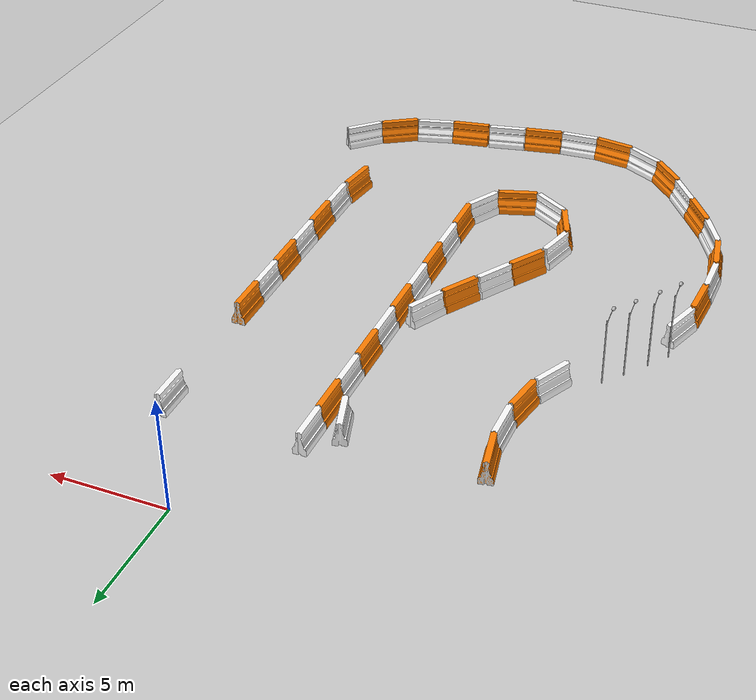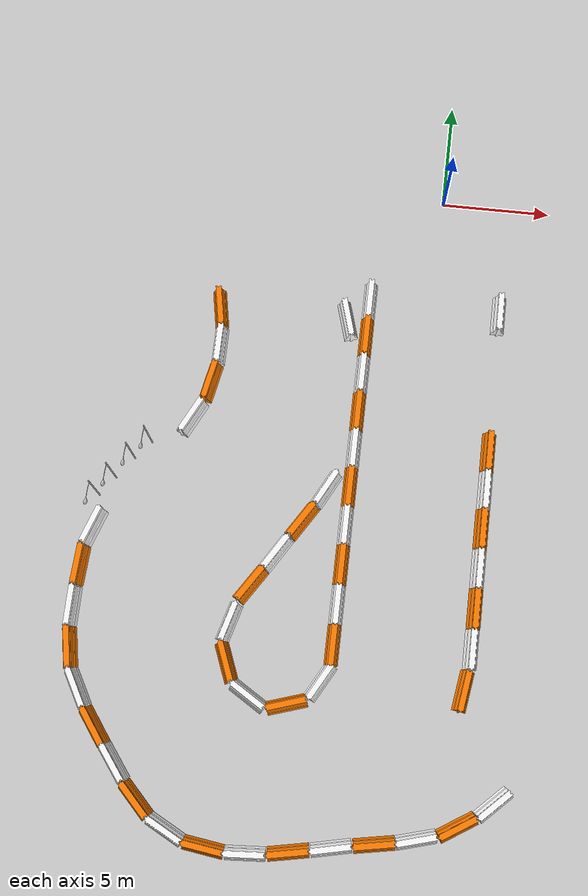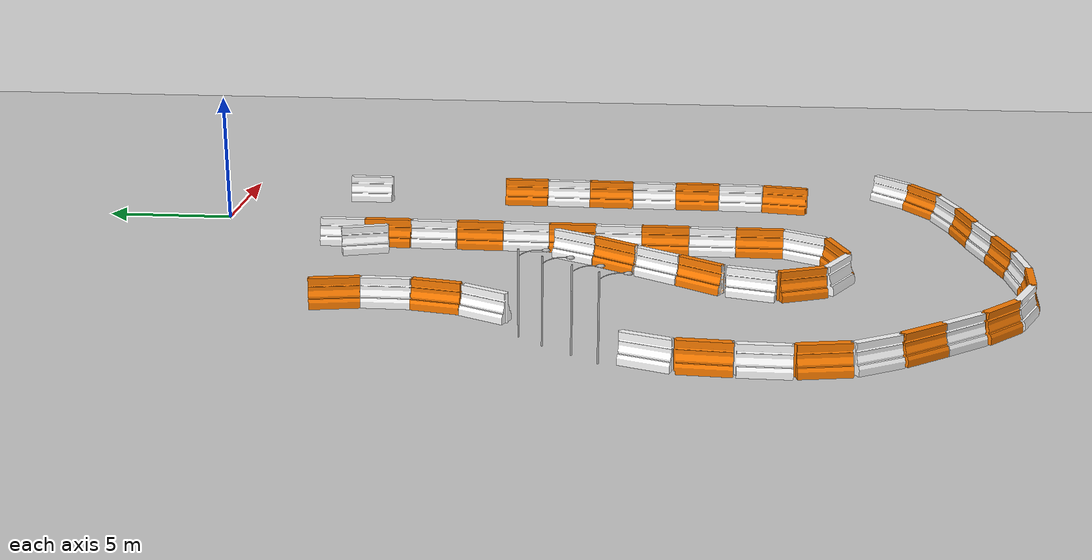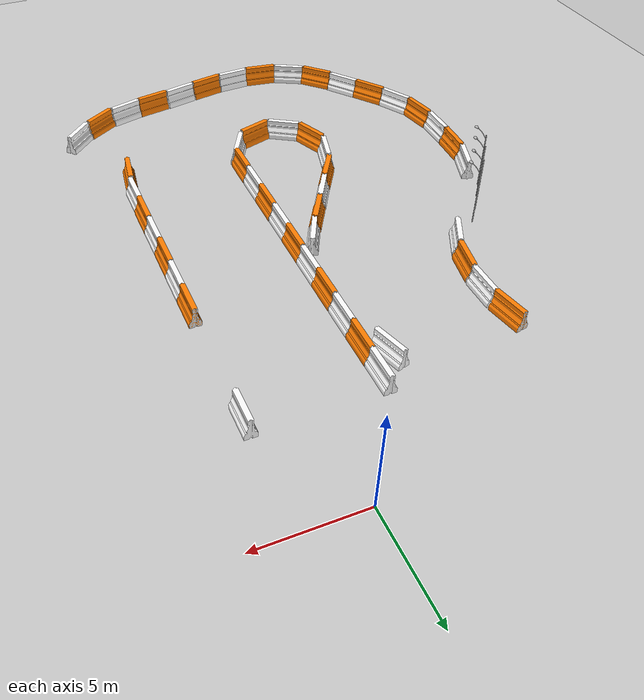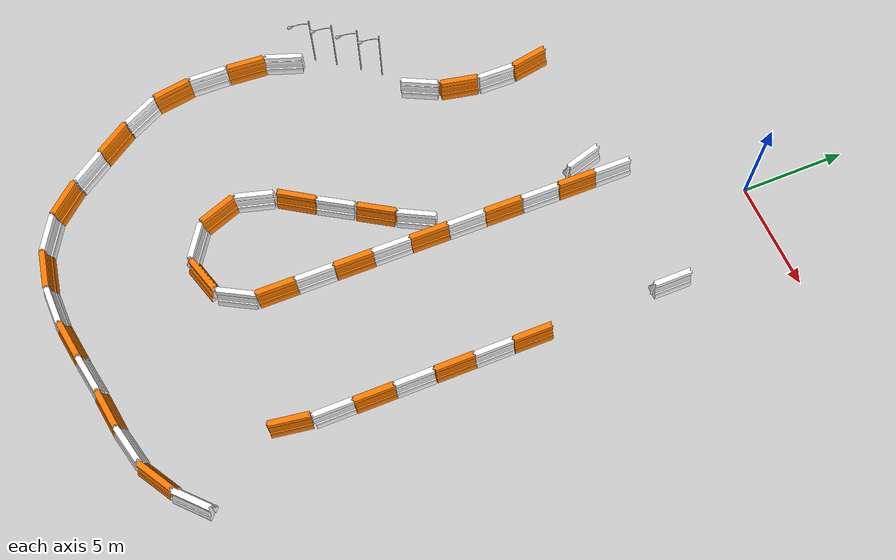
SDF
<sdf version="1.4">
 <world name="default">
  <model name="ground_plane">
   <static>1</static>
   <link name="link">
    <collision name="collision">
     <geometry><plane><normal>0 0 1</normal><size>100 100</size></plane></geometry>
     <surface><friction><ode><mu>100</mu><mu2>50</mu2></ode></friction></surface>
    </collision>
    <visual name="visual">
     <cast_shadows>0</cast_shadows>
     <geometry><plane><normal>0 0 1</normal><size>100 100</size></plane></geometry>
     <material>
      <script><uri>file://media/materials/scripts/gazebo.material</uri><name>Gazebo/Grey</name></script>
     </material>
    </visual>
    <velocity_decay><linear>0</linear><angular>0</angular></velocity_decay>
   </link>
  </model>
  <model name="drc_practice_white_jersey_barrier_24">
   <static>1</static>
   <link name="link">
    <visual name="visual">
     <geometry>
      <mesh><uri>model://drc_practice_white_jersey_barrier/meshes/jersey_barrier.dae</uri></mesh>
     </geometry>
    </visual>
    <collision name="collision">
     <geometry>
      <mesh><uri>model://drc_practice_white_jersey_barrier/meshes/jersey_barrier.dae</uri></mesh>
     </geometry>
    </collision>
    <velocity_decay><linear>0</linear><angular>0</angular></velocity_decay>
   </link>
   <pose>-3.97749 -6.376 0 0 -0 0.294214</pose>
  </model>
  <model name="Lamp Post">
   <static>1</static>
   <link name="link">
    <collision name="collision">
     <geometry><mesh><uri>model://lamp_post/meshes/lamp_post.dae</uri></mesh></geometry>
    </collision>
    <visual name="visual">
     <geometry><mesh><uri>model://lamp_post/meshes/lamp_post.dae</uri></mesh></geometry>
    </visual>
    <velocity_decay><linear>0</linear><angular>0</angular></velocity_decay>
   </link>
   <pose>-13.6677 -14.8578 0 0 -0 0</pose>
  </model>
  <model name="Lamp Post_0">
   <static>1</static>
   <link name="link">
    <collision name="collision">
     <geometry><mesh><uri>model://lamp_post/meshes/lamp_post.dae</uri></mesh></geometry>
    </collision>
    <visual name="visual">
     <geometry><mesh><uri>model://lamp_post/meshes/lamp_post.dae</uri></mesh></geometry>
    </visual>
    <velocity_decay><linear>0</linear><angular>0</angular></velocity_decay>
   </link>
   <pose>-12.9462 -13.8703 0 0 -0 0</pose>
  </model>
  <model name="Lamp Post_1">
   <static>1</static>
   <link name="link">
    <collision name="collision">
     <geometry><mesh><uri>model://lamp_post/meshes/lamp_post.dae</uri></mesh></geometry>
    </collision>
    <visual name="visual">
     <geometry><mesh><uri>model://lamp_post/meshes/lamp_post.dae</uri></mesh></geometry>
    </visual>
    <velocity_decay><linear>0</linear><angular>0</angular></velocity_decay>
   </link>
   <pose>-12.274 -13.0475 0 0 -0 0</pose>
  </model>
  <model name="drc_practice_white_jersey_barrier_26">
   <static>1</static>
   <link name="link">
    <visual name="visual">
     <geometry>
      <mesh><uri>model://drc_practice_white_jersey_barrier/meshes/jersey_barrier.dae</uri></mesh>
     </geometry>
    </visual>
    <collision name="collision">
     <geometry>
      <mesh><uri>model://drc_practice_white_jersey_barrier/meshes/jersey_barrier.dae</uri></mesh>
     </geometry>
    </collision>
    <velocity_decay><linear>0</linear><angular>0</angular></velocity_decay>
   </link>
   <pose>-3.04483 -5.35598 0 0 -0 0</pose>
  </model>
  <model name="drc_practice_organge_jersey_barrier_25">
   <static>1</static>
   <link name="link">
    <visual name="visual">
     <geometry>
      <mesh><uri>model://drc_practice_orange_jersey_barrier/meshes/jersey_barrier.dae</uri></mesh>
     </geometry>
    </visual>
    <collision name="collision">
     <geometry>
      <mesh><uri>model://drc_practice_orange_jersey_barrier/meshes/jersey_barrier.dae</uri></mesh>
     </geometry>
    </collision>
    <velocity_decay><linear>0</linear><angular>0</angular></velocity_decay>
   </link>
   <pose>-3.05148 -7.12574 0 0 -0 0</pose>
  </model>
  <model name="drc_practice_white_jersey_barrier_27">
   <static>1</static>
   <link name="link">
    <visual name="visual">
     <geometry>
      <mesh><uri>model://drc_practice_white_jersey_barrier/meshes/jersey_barrier.dae</uri></mesh>
     </geometry>
    </visual>
    <collision name="collision">
     <geometry>
      <mesh><uri>model://drc_practice_white_jersey_barrier/meshes/jersey_barrier.dae</uri></mesh>
     </geometry>
    </collision>
    <velocity_decay><linear>0</linear><angular>0</angular></velocity_decay>
   </link>
   <pose>-3.05862 -8.92187 0 0 -0 0</pose>
  </model>
  <model name="drc_practice_organge_jersey_barrier_26">
   <static>1</static>
   <link name="link">
    <visual name="visual">
     <geometry>
      <mesh><uri>model://drc_practice_orange_jersey_barrier/meshes/jersey_barrier.dae</uri></mesh>
     </geometry>
    </visual>
    <collision name="collision">
     <geometry>
      <mesh><uri>model://drc_practice_orange_jersey_barrier/meshes/jersey_barrier.dae</uri></mesh>
     </geometry>
    </collision>
    <velocity_decay><linear>0</linear><angular>0</angular></velocity_decay>
   </link>
   <pose>-3.07394 -10.728 0 0 -0 0</pose>
  </model>
  <model name="drc_practice_white_jersey_barrier_28">
   <static>1</static>
   <link name="link">
    <visual name="visual">
     <geometry>
      <mesh><uri>model://drc_practice_white_jersey_barrier/meshes/jersey_barrier.dae</uri></mesh>
     </geometry>
    </visual>
    <collision name="collision">
     <geometry>
      <mesh><uri>model://drc_practice_white_jersey_barrier/meshes/jersey_barrier.dae</uri></mesh>
     </geometry>
    </collision>
    <velocity_decay><linear>0</linear><angular>0</angular></velocity_decay>
   </link>
   <pose>-3.08094 -12.4967 0 0 -0 0</pose>
  </model>
  <model name="drc_practice_organge_jersey_barrier_27">
   <static>1</static>
   <link name="link">
    <visual name="visual">
     <geometry>
      <mesh><uri>model://drc_practice_orange_jersey_barrier/meshes/jersey_barrier.dae</uri></mesh>
     </geometry>
    </visual>
    <collision name="collision">
     <geometry>
      <mesh><uri>model://drc_practice_orange_jersey_barrier/meshes/jersey_barrier.dae</uri></mesh>
     </geometry>
    </collision>
    <velocity_decay><linear>0</linear><angular>0</angular></velocity_decay>
   </link>
   <pose>-3.09613 -14.2748 0 0 -0 0</pose>
  </model>
  <model name="drc_practice_white_jersey_barrier_29">
   <static>1</static>
   <link name="link">
    <visual name="visual">
     <geometry>
      <mesh><uri>model://drc_practice_white_jersey_barrier/meshes/jersey_barrier.dae</uri></mesh>
     </geometry>
    </visual>
    <collision name="collision">
     <geometry>
      <mesh><uri>model://drc_practice_white_jersey_barrier/meshes/jersey_barrier.dae</uri></mesh>
     </geometry>
    </collision>
    <velocity_decay><linear>0</linear><angular>0</angular></velocity_decay>
   </link>
   <pose>-3.1112 -16.0395 0 0 -0 0</pose>
  </model>
  <model name="drc_practice_organge_jersey_barrier_30">
   <static>1</static>
   <link name="link">
    <visual name="visual">
     <geometry>
      <mesh><uri>model://drc_practice_orange_jersey_barrier/meshes/jersey_barrier.dae</uri></mesh>
     </geometry>
    </visual>
    <collision name="collision">
     <geometry>
      <mesh><uri>model://drc_practice_orange_jersey_barrier/meshes/jersey_barrier.dae</uri></mesh>
     </geometry>
    </collision>
    <velocity_decay><linear>0</linear><angular>0</angular></velocity_decay>
   </link>
   <pose>-9.91442 -6.43478 0 0 -0 0.189369</pose>
  </model>
  <model name="drc_practice_organge_jersey_barrier_31">
   <static>1</static>
   <link name="link">
    <visual name="visual">
     <geometry>
      <mesh><uri>model://drc_practice_orange_jersey_barrier/meshes/jersey_barrier.dae</uri></mesh>
     </geometry>
    </visual>
    <collision name="collision">
     <geometry>
      <mesh><uri>model://drc_practice_orange_jersey_barrier/meshes/jersey_barrier.dae</uri></mesh>
     </geometry>
    </collision>
    <velocity_decay><linear>0</linear><angular>0</angular></velocity_decay>
   </link>
   <pose>-9.94778 -10.0047 0 0 0 -0.188871</pose>
  </model>
  <model name="drc_practice_organge_jersey_barrier_32">
   <static>1</static>
   <link name="link">
    <visual name="visual">
     <geometry>
      <mesh><uri>model://drc_practice_orange_jersey_barrier/meshes/jersey_barrier.dae</uri></mesh>
     </geometry>
    </visual>
    <collision name="collision">
     <geometry>
      <mesh><uri>model://drc_practice_orange_jersey_barrier/meshes/jersey_barrier.dae</uri></mesh>
     </geometry>
    </collision>
    <velocity_decay><linear>0</linear><angular>0</angular></velocity_decay>
   </link>
   <pose>-5.07037 -16.0221 0 0 -0 2.58471</pose>
  </model>
  <model name="drc_practice_white_jersey_barrier_30">
   <static>1</static>
   <link name="link">
    <visual name="visual">
     <geometry>
      <mesh><uri>model://drc_practice_white_jersey_barrier/meshes/jersey_barrier.dae</uri></mesh>
     </geometry>
    </visual>
    <collision name="collision">
     <geometry>
      <mesh><uri>model://drc_practice_white_jersey_barrier/meshes/jersey_barrier.dae</uri></mesh>
     </geometry>
    </collision>
    <velocity_decay><linear>0</linear><angular>0</angular></velocity_decay>
   </link>
   <pose>-9.74307 -8.20965 0 0 -0 0</pose>
  </model>
  <model name="drc_practice_white_jersey_barrier_31">
   <static>1</static>
   <link name="link">
    <visual name="visual">
     <geometry>
      <mesh><uri>model://drc_practice_white_jersey_barrier/meshes/jersey_barrier.dae</uri></mesh>
     </geometry>
    </visual>
    <collision name="collision">
     <geometry>
      <mesh><uri>model://drc_practice_white_jersey_barrier/meshes/jersey_barrier.dae</uri></mesh>
     </geometry>
    </collision>
    <velocity_decay><linear>0</linear><angular>0</angular></velocity_decay>
   </link>
   <pose>-10.569 -11.7389 0 0 0 -0.459284</pose>
  </model>
  <model name="drc_practice_white_jersey_barrier_32">
   <static>1</static>
   <link name="link">
    <visual name="visual">
     <geometry>
      <mesh><uri>model://drc_practice_white_jersey_barrier/meshes/jersey_barrier.dae</uri></mesh>
     </geometry>
    </visual>
    <collision name="collision">
     <geometry>
      <mesh><uri>model://drc_practice_white_jersey_barrier/meshes/jersey_barrier.dae</uri></mesh>
     </geometry>
    </collision>
    <velocity_decay><linear>0</linear><angular>0</angular></velocity_decay>
   </link>
   <pose>-6.06161 -17.5832 0 0 -0 2.59191</pose>
  </model>
  <model name="drc_practice_white_jersey_barrier_33">
   <static>1</static>
   <link name="link">
    <visual name="visual">
     <geometry>
      <mesh><uri>model://drc_practice_white_jersey_barrier/meshes/jersey_barrier.dae</uri></mesh>
     </geometry>
    </visual>
    <collision name="collision">
     <geometry>
      <mesh><uri>model://drc_practice_white_jersey_barrier/meshes/jersey_barrier.dae</uri></mesh>
     </geometry>
    </collision>
    <velocity_decay><linear>0</linear><angular>0</angular></velocity_decay>
   </link>
   <pose>-7.77495 -20.8456 0 0 -0 2.87477</pose>
  </model>
  <model name="drc_practice_organge_jersey_barrier_33">
   <static>1</static>
   <link name="link">
    <visual name="visual">
     <geometry>
      <mesh><uri>model://drc_practice_orange_jersey_barrier/meshes/jersey_barrier.dae</uri></mesh>
     </geometry>
    </visual>
    <collision name="collision">
     <geometry>
      <mesh><uri>model://drc_practice_orange_jersey_barrier/meshes/jersey_barrier.dae</uri></mesh>
     </geometry>
    </collision>
    <velocity_decay><linear>0</linear><angular>0</angular></velocity_decay>
   </link>
   <pose>-3.10911 -17.8095 0 0 -0 0</pose>
  </model>
  <model name="drc_practice_white_jersey_barrier_34">
   <static>1</static>
   <link name="link">
    <visual name="visual">
     <geometry>
      <mesh><uri>model://drc_practice_white_jersey_barrier/meshes/jersey_barrier.dae</uri></mesh>
     </geometry>
    </visual>
    <collision name="collision">
     <geometry>
      <mesh><uri>model://drc_practice_white_jersey_barrier/meshes/jersey_barrier.dae</uri></mesh>
     </geometry>
    </collision>
    <velocity_decay><linear>0</linear><angular>0</angular></velocity_decay>
   </link>
   <pose>-3.11856 -19.5914 0 0 -0 0</pose>
  </model>
  <model name="drc_practice_organge_jersey_barrier_34">
   <static>1</static>
   <link name="link">
    <visual name="visual">
     <geometry>
      <mesh><uri>model://drc_practice_orange_jersey_barrier/meshes/jersey_barrier.dae</uri></mesh>
     </geometry>
    </visual>
    <collision name="collision">
     <geometry>
      <mesh><uri>model://drc_practice_orange_jersey_barrier/meshes/jersey_barrier.dae</uri></mesh>
     </geometry>
    </collision>
    <velocity_decay><linear>0</linear><angular>0</angular></velocity_decay>
   </link>
   <pose>-3.12897 -21.3702 0 0 -0 0</pose>
  </model>
  <model name="drc_practice_white_jersey_barrier_35">
   <static>1</static>
   <link name="link">
    <visual name="visual">
     <geometry>
      <mesh><uri>model://drc_practice_white_jersey_barrier/meshes/jersey_barrier.dae</uri></mesh>
     </geometry>
    </visual>
    <collision name="collision">
     <geometry>
      <mesh><uri>model://drc_practice_white_jersey_barrier/meshes/jersey_barrier.dae</uri></mesh>
     </geometry>
    </collision>
    <velocity_decay><linear>0</linear><angular>0</angular></velocity_decay>
   </link>
   <pose>-3.5088 -23 0 0 0 -0.506066</pose>
  </model>
  <model name="drc_practice_organge_jersey_barrier_35">
   <static>1</static>
   <link name="link">
    <visual name="visual">
     <geometry>
      <mesh><uri>model://drc_practice_orange_jersey_barrier/meshes/jersey_barrier.dae</uri></mesh>
     </geometry>
    </visual>
    <collision name="collision">
     <geometry>
      <mesh><uri>model://drc_practice_orange_jersey_barrier/meshes/jersey_barrier.dae</uri></mesh>
     </geometry>
    </collision>
    <velocity_decay><linear>0</linear><angular>0</angular></velocity_decay>
   </link>
   <pose>-4.85199 -24.095 0 0 0 -1.25715</pose>
  </model>
  <model name="drc_practice_white_jersey_barrier_36">
   <static>1</static>
   <link name="link">
    <visual name="visual">
     <geometry>
      <mesh><uri>model://drc_practice_white_jersey_barrier/meshes/jersey_barrier.dae</uri></mesh>
     </geometry>
    </visual>
    <collision name="collision">
     <geometry>
      <mesh><uri>model://drc_practice_white_jersey_barrier/meshes/jersey_barrier.dae</uri></mesh>
     </geometry>
    </collision>
    <velocity_decay><linear>0</linear><angular>0</angular></velocity_decay>
   </link>
   <pose>-6.54985 -23.9256 0 0 0 -2.11923</pose>
  </model>
  <model name="drc_practice_organge_jersey_barrier_36">
   <static>1</static>
   <link name="link">
    <visual name="visual">
     <geometry>
      <mesh><uri>model://drc_practice_orange_jersey_barrier/meshes/jersey_barrier.dae</uri></mesh>
     </geometry>
    </visual>
    <collision name="collision">
     <geometry>
      <mesh><uri>model://drc_practice_orange_jersey_barrier/meshes/jersey_barrier.dae</uri></mesh>
     </geometry>
    </collision>
    <velocity_decay><linear>0</linear><angular>0</angular></velocity_decay>
   </link>
   <pose>-7.67559 -22.5916 0 0 0 -2.76094</pose>
  </model>
  <model name="drc_practice_organge_jersey_barrier_37">
   <static>1</static>
   <link name="link">
    <visual name="visual">
     <geometry>
      <mesh><uri>model://drc_practice_orange_jersey_barrier/meshes/jersey_barrier.dae</uri></mesh>
     </geometry>
    </visual>
    <collision name="collision">
     <geometry>
      <mesh><uri>model://drc_practice_orange_jersey_barrier/meshes/jersey_barrier.dae</uri></mesh>
     </geometry>
    </collision>
    <velocity_decay><linear>0</linear><angular>0</angular></velocity_decay>
   </link>
   <pose>-7.02522 -19.0986 0 0 -0 2.57099</pose>
  </model>
  <model name="drc_practice_white_jersey_barrier_37">
   <static>1</static>
   <link name="link">
    <visual name="visual">
     <geometry>
      <mesh><uri>model://drc_practice_white_jersey_barrier/meshes/jersey_barrier.dae</uri></mesh>
     </geometry>
    </visual>
    <collision name="collision">
     <geometry>
      <mesh><uri>model://drc_practice_white_jersey_barrier/meshes/jersey_barrier.dae</uri></mesh>
     </geometry>
    </collision>
    <velocity_decay><linear>0</linear><angular>0</angular></velocity_decay>
   </link>
   <pose>-4.14275 -14.4624 0 0 -0 2.66082</pose>
  </model>
  <model name="drc_practice_white_jersey_barrier_38">
   <static>1</static>
   <link name="link">
    <visual name="visual">
     <geometry>
      <mesh><uri>model://drc_practice_white_jersey_barrier/meshes/jersey_barrier.dae</uri></mesh>
     </geometry>
    </visual>
    <collision name="collision">
     <geometry>
      <mesh><uri>model://drc_practice_white_jersey_barrier/meshes/jersey_barrier.dae</uri></mesh>
     </geometry>
    </collision>
    <velocity_decay><linear>0</linear><angular>0</angular></velocity_decay>
   </link>
   <pose>2.99022 -5.38528 0 0 -0 0</pose>
  </model>
  <model name="drc_practice_organge_jersey_barrier_38">
   <static>1</static>
   <link name="link">
    <visual name="visual">
     <geometry>
      <mesh><uri>model://drc_practice_orange_jersey_barrier/meshes/jersey_barrier.dae</uri></mesh>
     </geometry>
    </visual>
    <collision name="collision">
     <geometry>
      <mesh><uri>model://drc_practice_orange_jersey_barrier/meshes/jersey_barrier.dae</uri></mesh>
     </geometry>
    </collision>
    <velocity_decay><linear>0</linear><angular>0</angular></velocity_decay>
   </link>
   <pose>3 -12 0 0 -0 0</pose>
  </model>
  <model name="drc_practice_white_jersey_barrier_39">
   <static>1</static>
   <link name="link">
    <visual name="visual">
     <geometry>
      <mesh><uri>model://drc_practice_white_jersey_barrier/meshes/jersey_barrier.dae</uri></mesh>
     </geometry>
    </visual>
    <collision name="collision">
     <geometry>
      <mesh><uri>model://drc_practice_white_jersey_barrier/meshes/jersey_barrier.dae</uri></mesh>
     </geometry>
    </collision>
    <velocity_decay><linear>0</linear><angular>0</angular></velocity_decay>
   </link>
   <pose>2.99462 -13.7846 0 0 -0 0</pose>
  </model>
  <model name="drc_practice_organge_jersey_barrier_39">
   <static>1</static>
   <link name="link">
    <visual name="visual">
     <geometry>
      <mesh><uri>model://drc_practice_orange_jersey_barrier/meshes/jersey_barrier.dae</uri></mesh>
     </geometry>
    </visual>
    <collision name="collision">
     <geometry>
      <mesh><uri>model://drc_practice_orange_jersey_barrier/meshes/jersey_barrier.dae</uri></mesh>
     </geometry>
    </collision>
    <velocity_decay><linear>0</linear><angular>0</angular></velocity_decay>
   </link>
   <pose>2.97343 -15.5567 0 0 -0 0</pose>
  </model>
  <model name="drc_practice_white_jersey_barrier_40">
   <static>1</static>
   <link name="link">
    <visual name="visual">
     <geometry>
      <mesh><uri>model://drc_practice_white_jersey_barrier/meshes/jersey_barrier.dae</uri></mesh>
     </geometry>
    </visual>
    <collision name="collision">
     <geometry>
      <mesh><uri>model://drc_practice_white_jersey_barrier/meshes/jersey_barrier.dae</uri></mesh>
     </geometry>
    </collision>
    <velocity_decay><linear>0</linear><angular>0</angular></velocity_decay>
   </link>
   <pose>2.96459 -17.3555 0 0 -0 0</pose>
  </model>
  <model name="drc_practice_organge_jersey_barrier_40">
   <static>1</static>
   <link name="link">
    <visual name="visual">
     <geometry>
      <mesh><uri>model://drc_practice_orange_jersey_barrier/meshes/jersey_barrier.dae</uri></mesh>
     </geometry>
    </visual>
    <collision name="collision">
     <geometry>
      <mesh><uri>model://drc_practice_orange_jersey_barrier/meshes/jersey_barrier.dae</uri></mesh>
     </geometry>
    </collision>
    <velocity_decay><linear>0</linear><angular>0</angular></velocity_decay>
   </link>
   <pose>2.9538 -19.14 0 0 -0 0</pose>
  </model>
  <model name="drc_practice_white_jersey_barrier_41">
   <static>1</static>
   <link name="link">
    <visual name="visual">
     <geometry>
      <mesh><uri>model://drc_practice_white_jersey_barrier/meshes/jersey_barrier.dae</uri></mesh>
     </geometry>
    </visual>
    <collision name="collision">
     <geometry>
      <mesh><uri>model://drc_practice_white_jersey_barrier/meshes/jersey_barrier.dae</uri></mesh>
     </geometry>
    </collision>
    <velocity_decay><linear>0</linear><angular>0</angular></velocity_decay>
   </link>
   <pose>2.92708 -20.9252 0 0 -0 0</pose>
  </model>
  <model name="drc_practice_organge_jersey_barrier_41">
   <static>1</static>
   <link name="link">
    <visual name="visual">
     <geometry>
      <mesh><uri>model://drc_practice_orange_jersey_barrier/meshes/jersey_barrier.dae</uri></mesh>
     </geometry>
    </visual>
    <collision name="collision">
     <geometry>
      <mesh><uri>model://drc_practice_orange_jersey_barrier/meshes/jersey_barrier.dae</uri></mesh>
     </geometry>
    </collision>
    <velocity_decay><linear>0</linear><angular>0</angular></velocity_decay>
   </link>
   <pose>2.72401 -22.7457 0 0 0 -0.149645</pose>
  </model>
  <model name="drc_practice_white_jersey_barrier_43">
   <static>1</static>
   <link name="link">
    <visual name="visual">
     <geometry>
      <mesh><uri>model://drc_practice_white_jersey_barrier/meshes/jersey_barrier.dae</uri></mesh>
     </geometry>
    </visual>
    <collision name="collision">
     <geometry>
      <mesh><uri>model://drc_practice_white_jersey_barrier/meshes/jersey_barrier.dae</uri></mesh>
     </geometry>
    </collision>
    <velocity_decay><linear>0</linear><angular>0</angular></velocity_decay>
   </link>
   <pose>4.37436 -27.3696 0 0 0 -0.801831</pose>
  </model>
  <model name="drc_practice_organge_jersey_barrier_42">
   <static>1</static>
   <link name="link">
    <visual name="visual">
     <geometry>
      <mesh><uri>model://drc_practice_orange_jersey_barrier/meshes/jersey_barrier.dae</uri></mesh>
     </geometry>
    </visual>
    <collision name="collision">
     <geometry>
      <mesh><uri>model://drc_practice_orange_jersey_barrier/meshes/jersey_barrier.dae</uri></mesh>
     </geometry>
    </collision>
    <velocity_decay><linear>0</linear><angular>0</angular></velocity_decay>
   </link>
   <pose>-4.10613 -30.1995 0 0 0 -1.37528</pose>
  </model>
  <model name="drc_practice_organge_jersey_barrier_43">
   <static>1</static>
   <link name="link">
    <visual name="visual">
     <geometry>
      <mesh><uri>model://drc_practice_orange_jersey_barrier/meshes/jersey_barrier.dae</uri></mesh>
     </geometry>
    </visual>
    <collision name="collision">
     <geometry>
      <mesh><uri>model://drc_practice_orange_jersey_barrier/meshes/jersey_barrier.dae</uri></mesh>
     </geometry>
    </collision>
    <velocity_decay><linear>0</linear><angular>0</angular></velocity_decay>
   </link>
   <pose>-0.532365 -29.5132 0 0 0 -1.38631</pose>
  </model>
  <model name="drc_practice_organge_jersey_barrier_44">
   <static>1</static>
   <link name="link">
    <visual name="visual">
     <geometry>
      <mesh><uri>model://drc_practice_orange_jersey_barrier/meshes/jersey_barrier.dae</uri></mesh>
     </geometry>
    </visual>
    <collision name="collision">
     <geometry>
      <mesh><uri>model://drc_practice_orange_jersey_barrier/meshes/jersey_barrier.dae</uri></mesh>
     </geometry>
    </collision>
    <velocity_decay><linear>0</linear><angular>0</angular></velocity_decay>
   </link>
   <pose>2.90905 -28.4471 0 0 0 -1.00524</pose>
  </model>
  <model name="drc_practice_white_jersey_barrier_44">
   <static>1</static>
   <link name="link">
    <visual name="visual">
     <geometry>
      <mesh><uri>model://drc_practice_white_jersey_barrier/meshes/jersey_barrier.dae</uri></mesh>
     </geometry>
    </visual>
    <collision name="collision">
     <geometry>
      <mesh><uri>model://drc_practice_white_jersey_barrier/meshes/jersey_barrier.dae</uri></mesh>
     </geometry>
    </collision>
    <velocity_decay><linear>0</linear><angular>0</angular></velocity_decay>
   </link>
   <pose>1.21748 -29.1275 0 0 0 -1.29655</pose>
  </model>
  <model name="drc_practice_white_jersey_barrier_45">
   <static>1</static>
   <link name="link">
    <visual name="visual">
     <geometry>
      <mesh><uri>model://drc_practice_white_jersey_barrier/meshes/jersey_barrier.dae</uri></mesh>
     </geometry>
    </visual>
    <collision name="collision">
     <geometry>
      <mesh><uri>model://drc_practice_white_jersey_barrier/meshes/jersey_barrier.dae</uri></mesh>
     </geometry>
    </collision>
    <velocity_decay><linear>0</linear><angular>0</angular></velocity_decay>
   </link>
   <pose>-2.32505 -29.8419 0 0 0 -1.35224</pose>
  </model>
  <model name="drc_practice_white_jersey_barrier_46">
   <static>1</static>
   <link name="link">
    <visual name="visual">
     <geometry>
      <mesh><uri>model://drc_practice_white_jersey_barrier/meshes/jersey_barrier.dae</uri></mesh>
     </geometry>
    </visual>
    <collision name="collision">
     <geometry>
      <mesh><uri>model://drc_practice_white_jersey_barrier/meshes/jersey_barrier.dae</uri></mesh>
     </geometry>
    </collision>
    <velocity_decay><linear>0</linear><angular>0</angular></velocity_decay>
   </link>
   <pose>-5.91758 -30.4372 0 0 0 -1.50525</pose>
  </model>
  <model name="drc_practice_organge_jersey_barrier_45">
   <static>1</static>
   <link name="link">
    <visual name="visual">
     <geometry>
      <mesh><uri>model://drc_practice_orange_jersey_barrier/meshes/jersey_barrier.dae</uri></mesh>
     </geometry>
    </visual>
    <collision name="collision">
     <geometry>
      <mesh><uri>model://drc_practice_orange_jersey_barrier/meshes/jersey_barrier.dae</uri></mesh>
     </geometry>
    </collision>
    <velocity_decay><linear>0</linear><angular>0</angular></velocity_decay>
   </link>
   <pose>-7.70296 -30.3666 0 0 0 -1.70642</pose>
  </model>
  <model name="drc_practice_white_jersey_barrier_47">
   <static>1</static>
   <link name="link">
    <visual name="visual">
     <geometry>
      <mesh><uri>model://drc_practice_white_jersey_barrier/meshes/jersey_barrier.dae</uri></mesh>
     </geometry>
    </visual>
    <collision name="collision">
     <geometry>
      <mesh><uri>model://drc_practice_white_jersey_barrier/meshes/jersey_barrier.dae</uri></mesh>
     </geometry>
    </collision>
    <velocity_decay><linear>0</linear><angular>0</angular></velocity_decay>
   </link>
   <pose>-9.3939 -29.8211 0 0 0 -2.05155</pose>
  </model>
  <model name="drc_practice_organge_jersey_barrier_46">
   <static>1</static>
   <link name="link">
    <visual name="visual">
     <geometry>
      <mesh><uri>model://drc_practice_orange_jersey_barrier/meshes/jersey_barrier.dae</uri></mesh>
     </geometry>
    </visual>
    <collision name="collision">
     <geometry>
      <mesh><uri>model://drc_practice_orange_jersey_barrier/meshes/jersey_barrier.dae</uri></mesh>
     </geometry>
    </collision>
    <velocity_decay><linear>0</linear><angular>0</angular></velocity_decay>
   </link>
   <pose>-10.8234 -28.7465 0 0 0 -2.37224</pose>
  </model>
  <model name="drc_practice_white_jersey_barrier_48">
   <static>1</static>
   <link name="link">
    <visual name="visual">
     <geometry>
      <mesh><uri>model://drc_practice_white_jersey_barrier/meshes/jersey_barrier.dae</uri></mesh>
     </geometry>
    </visual>
    <collision name="collision">
     <geometry>
      <mesh><uri>model://drc_practice_white_jersey_barrier/meshes/jersey_barrier.dae</uri></mesh>
     </geometry>
    </collision>
    <velocity_decay><linear>0</linear><angular>0</angular></velocity_decay>
   </link>
   <pose>-11.9707 -27.33 0 0 0 -2.49742</pose>
  </model>
  <model name="drc_practice_organge_jersey_barrier_47">
   <static>1</static>
   <link name="link">
    <visual name="visual">
     <geometry>
      <mesh><uri>model://drc_practice_orange_jersey_barrier/meshes/jersey_barrier.dae</uri></mesh>
     </geometry>
    </visual>
    <collision name="collision">
     <geometry>
      <mesh><uri>model://drc_practice_orange_jersey_barrier/meshes/jersey_barrier.dae</uri></mesh>
     </geometry>
    </collision>
    <velocity_decay><linear>0</linear><angular>0</angular></velocity_decay>
   </link>
   <pose>-13.0264 -25.9002 0 0 0 -2.51334</pose>
  </model>
  <model name="drc_practice_white_jersey_barrier_49">
   <static>1</static>
   <link name="link">
    <visual name="visual">
     <geometry>
      <mesh><uri>model://drc_practice_white_jersey_barrier/meshes/jersey_barrier.dae</uri></mesh>
     </geometry>
    </visual>
    <collision name="collision">
     <geometry>
      <mesh><uri>model://drc_practice_white_jersey_barrier/meshes/jersey_barrier.dae</uri></mesh>
     </geometry>
    </collision>
    <velocity_decay><linear>0</linear><angular>0</angular></velocity_decay>
   </link>
   <pose>-13.985 -24.3667 0 0 0 -2.6325</pose>
  </model>
  <model name="drc_practice_organge_jersey_barrier_48">
   <static>1</static>
   <link name="link">
    <visual name="visual">
     <geometry>
      <mesh><uri>model://drc_practice_orange_jersey_barrier/meshes/jersey_barrier.dae</uri></mesh>
     </geometry>
    </visual>
    <collision name="collision">
     <geometry>
      <mesh><uri>model://drc_practice_orange_jersey_barrier/meshes/jersey_barrier.dae</uri></mesh>
     </geometry>
    </collision>
    <velocity_decay><linear>0</linear><angular>0</angular></velocity_decay>
   </link>
   <pose>-14.5921 -22.6703 0 0 0 -2.95669</pose>
  </model>
  <model name="drc_practice_white_jersey_barrier_50">
   <static>1</static>
   <link name="link">
    <visual name="visual">
     <geometry>
      <mesh><uri>model://drc_practice_white_jersey_barrier/meshes/jersey_barrier.dae</uri></mesh>
     </geometry>
    </visual>
    <collision name="collision">
     <geometry>
      <mesh><uri>model://drc_practice_white_jersey_barrier/meshes/jersey_barrier.dae</uri></mesh>
     </geometry>
    </collision>
    <velocity_decay><linear>0</linear><angular>0</angular></velocity_decay>
   </link>
   <pose>-14.7693 -20.8609 0 0 -0 3.13906</pose>
  </model>
  <model name="drc_practice_organge_jersey_barrier_49">
   <static>1</static>
   <link name="link">
    <visual name="visual">
     <geometry>
      <mesh><uri>model://drc_practice_orange_jersey_barrier/meshes/jersey_barrier.dae</uri></mesh>
     </geometry>
    </visual>
    <collision name="collision">
     <geometry>
      <mesh><uri>model://drc_practice_orange_jersey_barrier/meshes/jersey_barrier.dae</uri></mesh>
     </geometry>
    </collision>
    <velocity_decay><linear>0</linear><angular>0</angular></velocity_decay>
   </link>
   <pose>-14.7019 -19.0291 0 0 -0 3.08838</pose>
  </model>
  <model name="drc_practice_white_jersey_barrier_51">
   <static>1</static>
   <link name="link">
    <visual name="visual">
     <geometry>
      <mesh><uri>model://drc_practice_white_jersey_barrier/meshes/jersey_barrier.dae</uri></mesh>
     </geometry>
    </visual>
    <collision name="collision">
     <geometry>
      <mesh><uri>model://drc_practice_white_jersey_barrier/meshes/jersey_barrier.dae</uri></mesh>
     </geometry>
    </collision>
    <velocity_decay><linear>0</linear><angular>0</angular></velocity_decay>
   </link>
   <pose>-14.3587 -17.2277 0 0 -0 2.80965</pose>
  </model>
  <model name="Lamp Post_2">
   <static>1</static>
   <link name="link">
    <collision name="collision">
     <geometry><mesh><uri>model://lamp_post/meshes/lamp_post.dae</uri></mesh></geometry>
    </collision>
    <visual name="visual">
     <geometry><mesh><uri>model://lamp_post/meshes/lamp_post.dae</uri></mesh></geometry>
    </visual>
    <velocity_decay><linear>0</linear><angular>0</angular></velocity_decay>
   </link>
   <pose>-14.2937 -15.7322 0 0 -0 0</pose>
  </model>
 </world>
</sdf>
